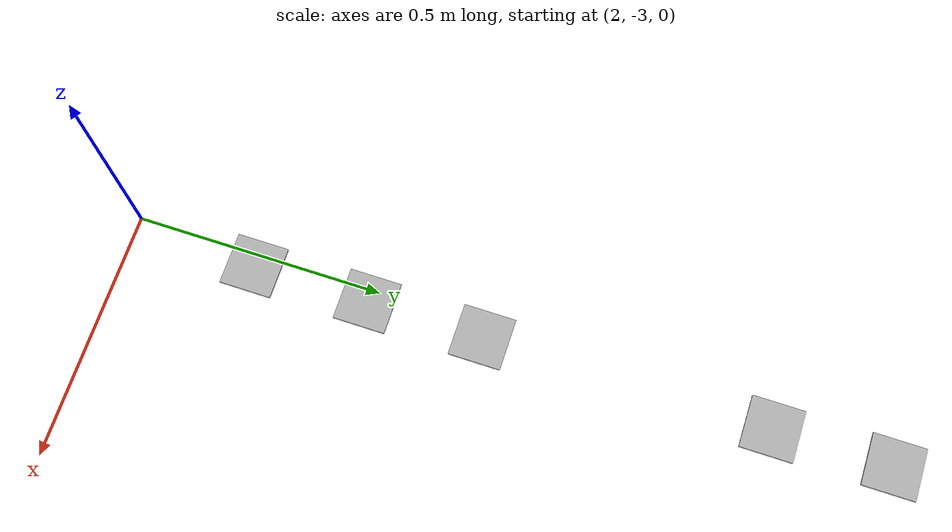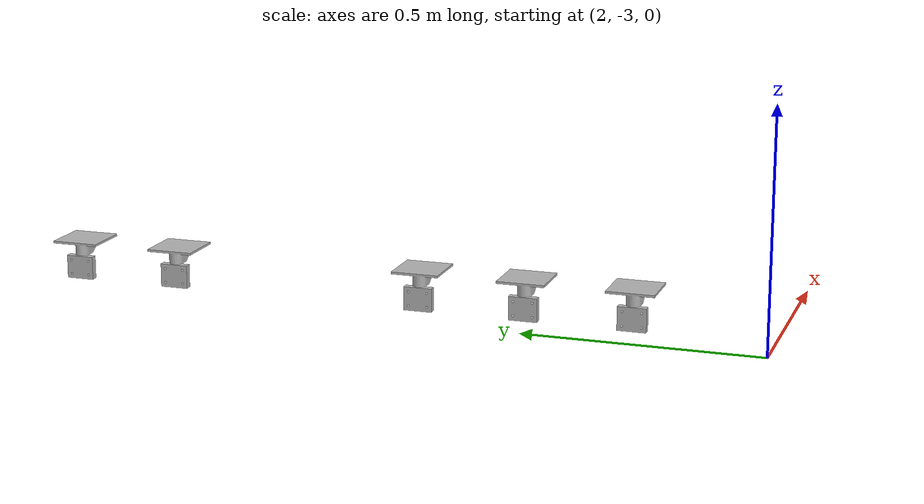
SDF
<sdf version="1.7">
 <world name="default">
  <model name="SolarPanel_0">
   <link name="solar_panel_base_link">
    <gravity>0</gravity>
    <visual name="visual">
     <geometry>
      <mesh><uri>/home/vincent/.gazebo/models/SolarPanel/supportSolarPanel.dae</uri><scale>1 1 1</scale></mesh>
     </geometry>
    </visual>
    <inertial>
     <inertia><ixx>1</ixx><ixy>0</ixy><ixz>0</ixz><iyy>1</iyy><iyz>0</iyz><izz>1</izz></inertia>
     <mass>1</mass>
    </inertial>
   </link>
   <link name="solar_panel">
    <inertial>
     <inertia><ixx>0.01</ixx><ixy>0</ixy><ixz>0</ixz><iyy>0.01</iyy><iyz>0</iyz><izz>0.01</izz></inertia>
     <mass>1</mass>
    </inertial>
    <pose>0 0 0.055 0 -0 3.14159</pose>
    <visual name="visual">
     <geometry>
      <mesh><uri>/home/vincent/.gazebo/models/SolarPanel/solarPanelTextured.dae</uri><scale>1 1 1</scale></mesh>
     </geometry>
     <material>
      <lighting>1</lighting>
      <script>
       <uri>/home/vincent/.gazebo/models/SolarPanel/materials/scripts</uri>
       <uri>/home/vincent/.gazebo/models/SolarPanel/materials/textures</uri>
       <name>solarPanelMat/Diffuse</name>
       <name>Gazebo/Grey</name>
      </script>
      <shader type="pixel"/>
     </material>
    </visual>
    <collision name="collision">
     <geometry>
      <mesh><uri>/home/vincent/.gazebo/models/SolarPanel/solarPanelTextured.dae</uri><scale>1 1 1</scale></mesh>
     </geometry>
     <surface>
      <friction>
       <ode><mu>1</mu><mu2>1</mu2><fdir1>0 0 0</fdir1><slip1>0</slip1><slip2>0</slip2></ode>
       <torsional>
        <coefficient>1</coefficient>
        <patch_radius>0</patch_radius>
        <surface_radius>0</surface_radius>
        <use_patch_radius>1</use_patch_radius>
        <ode><slip>0</slip></ode>
       </torsional>
      </friction>
      <bounce><restitution_coefficient>0</restitution_coefficient><threshold>1e+06</threshold></bounce>
      <contact>
       <collide_without_contact>0</collide_without_contact>
       <collide_without_contact_bitmask>1</collide_without_contact_bitmask>
       <collide_bitmask>1</collide_bitmask>
       <ode>
        <soft_cfm>0</soft_cfm>
        <soft_erp>0.2</soft_erp>
        <kp>1e+13</kp>
        <kd>1</kd>
        <max_vel>0.01</max_vel>
        <min_depth>0.01</min_depth>
       </ode>
       <bullet>
        <split_impulse>1</split_impulse>
        <split_impulse_penetration_threshold>-0.01</split_impulse_penetration_threshold>
        <soft_cfm>0</soft_cfm>
        <soft_erp>0.2</soft_erp>
        <kp>1e+13</kp>
        <kd>1</kd>
       </bullet>
      </contact>
     </surface>
    </collision>
   </link>
   <joint name="revolution" type="revolute">
    <parent>solar_panel_base_link</parent>
    <child>solar_panel</child>
    <axis>
     <xyz>0 0 1</xyz>
     <dynamics>
      <friction>0.005</friction>
      <damping>0.001</damping>
      <spring_reference>0</spring_reference>
      <spring_stiffness>0</spring_stiffness>
     </dynamics>
     <limit><lower>-1e+16</lower><upper>1e+16</upper></limit>
    </axis>
   </joint>
   <joint name="fix" type="fixed"><parent>world</parent><child>solar_panel_base_link</child></joint>
   <pose>2.037 -2.72457 0.044632 0 -0 1.5708</pose>
  </model>
  <model name="SolarPanel_0_clone">
   <link name="solar_panel_base_link">
    <gravity>0</gravity>
    <visual name="visual">
     <geometry>
      <mesh><uri>/home/vincent/.gazebo/models/SolarPanel/supportSolarPanel.dae</uri><scale>1 1 1</scale></mesh>
     </geometry>
    </visual>
    <inertial>
     <inertia><ixx>1</ixx><ixy>0</ixy><ixz>0</ixz><iyy>1</iyy><iyz>0</iyz><izz>1</izz></inertia>
     <mass>1</mass>
    </inertial>
   </link>
   <link name="solar_panel">
    <inertial>
     <inertia><ixx>0.01</ixx><ixy>0</ixy><ixz>0</ixz><iyy>0.01</iyy><iyz>0</iyz><izz>0.01</izz></inertia>
     <mass>1</mass>
    </inertial>
    <pose>0 0 0.055 0 -0 3.14159</pose>
    <visual name="visual">
     <geometry>
      <mesh><uri>/home/vincent/.gazebo/models/SolarPanel/solarPanelTextured.dae</uri><scale>1 1 1</scale></mesh>
     </geometry>
     <material>
      <lighting>1</lighting>
      <script>
       <uri>/home/vincent/.gazebo/models/SolarPanel/materials/scripts</uri>
       <uri>/home/vincent/.gazebo/models/SolarPanel/materials/textures</uri>
       <name>solarPanelMat/Diffuse</name>
       <name>Gazebo/Grey</name>
      </script>
      <shader type="pixel"/>
     </material>
    </visual>
    <collision name="collision">
     <geometry>
      <mesh><uri>/home/vincent/.gazebo/models/SolarPanel/solarPanelTextured.dae</uri><scale>1 1 1</scale></mesh>
     </geometry>
     <surface>
      <friction>
       <ode><mu>1</mu><mu2>1</mu2><fdir1>0 0 0</fdir1><slip1>0</slip1><slip2>0</slip2></ode>
       <torsional>
        <coefficient>1</coefficient>
        <patch_radius>0</patch_radius>
        <surface_radius>0</surface_radius>
        <use_patch_radius>1</use_patch_radius>
        <ode><slip>0</slip></ode>
       </torsional>
      </friction>
      <bounce><restitution_coefficient>0</restitution_coefficient><threshold>1e+06</threshold></bounce>
      <contact>
       <collide_without_contact>0</collide_without_contact>
       <collide_without_contact_bitmask>1</collide_without_contact_bitmask>
       <collide_bitmask>1</collide_bitmask>
       <ode>
        <soft_cfm>0</soft_cfm>
        <soft_erp>0.2</soft_erp>
        <kp>1e+13</kp>
        <kd>1</kd>
        <max_vel>0.01</max_vel>
        <min_depth>0.01</min_depth>
       </ode>
       <bullet>
        <split_impulse>1</split_impulse>
        <split_impulse_penetration_threshold>-0.01</split_impulse_penetration_threshold>
        <soft_cfm>0</soft_cfm>
        <soft_erp>0.2</soft_erp>
        <kp>1e+13</kp>
        <kd>1</kd>
       </bullet>
      </contact>
     </surface>
    </collision>
   </link>
   <joint name="revolution" type="revolute">
    <parent>solar_panel_base_link</parent>
    <child>solar_panel</child>
    <axis>
     <xyz>0 0 1</xyz>
     <dynamics>
      <friction>0.005</friction>
      <damping>0.001</damping>
      <spring_reference>0</spring_reference>
      <spring_stiffness>0</spring_stiffness>
     </dynamics>
     <limit><lower>-1e+16</lower><upper>1e+16</upper></limit>
    </axis>
   </joint>
   <joint name="fix" type="fixed"><parent>world</parent><child>solar_panel_base_link</child></joint>
   <pose>2.03634 -2.49972 0.044632 0 -0 1.5708</pose>
  </model>
  <model name="SolarPanel_0_clone_0">
   <link name="solar_panel_base_link">
    <gravity>0</gravity>
    <visual name="visual">
     <geometry>
      <mesh><uri>/home/vincent/.gazebo/models/SolarPanel/supportSolarPanel.dae</uri><scale>1 1 1</scale></mesh>
     </geometry>
    </visual>
    <inertial>
     <inertia><ixx>1</ixx><ixy>0</ixy><ixz>0</ixz><iyy>1</iyy><iyz>0</iyz><izz>1</izz></inertia>
     <mass>1</mass>
    </inertial>
   </link>
   <link name="solar_panel">
    <inertial>
     <inertia><ixx>0.01</ixx><ixy>0</ixy><ixz>0</ixz><iyy>0.01</iyy><iyz>0</iyz><izz>0.01</izz></inertia>
     <mass>1</mass>
    </inertial>
    <pose>0 0 0.055 0 -0 3.14159</pose>
    <visual name="visual">
     <geometry>
      <mesh><uri>/home/vincent/.gazebo/models/SolarPanel/solarPanelTextured.dae</uri><scale>1 1 1</scale></mesh>
     </geometry>
     <material>
      <lighting>1</lighting>
      <script>
       <uri>/home/vincent/.gazebo/models/SolarPanel/materials/scripts</uri>
       <uri>/home/vincent/.gazebo/models/SolarPanel/materials/textures</uri>
       <name>solarPanelMat/Diffuse</name>
       <name>Gazebo/Grey</name>
      </script>
      <shader type="pixel"/>
     </material>
    </visual>
    <collision name="collision">
     <geometry>
      <mesh><uri>/home/vincent/.gazebo/models/SolarPanel/solarPanelTextured.dae</uri><scale>1 1 1</scale></mesh>
     </geometry>
     <surface>
      <friction>
       <ode><mu>1</mu><mu2>1</mu2><fdir1>0 0 0</fdir1><slip1>0</slip1><slip2>0</slip2></ode>
       <torsional>
        <coefficient>1</coefficient>
        <patch_radius>0</patch_radius>
        <surface_radius>0</surface_radius>
        <use_patch_radius>1</use_patch_radius>
        <ode><slip>0</slip></ode>
       </torsional>
      </friction>
      <bounce><restitution_coefficient>0</restitution_coefficient><threshold>1e+06</threshold></bounce>
      <contact>
       <collide_without_contact>0</collide_without_contact>
       <collide_without_contact_bitmask>1</collide_without_contact_bitmask>
       <collide_bitmask>1</collide_bitmask>
       <ode>
        <soft_cfm>0</soft_cfm>
        <soft_erp>0.2</soft_erp>
        <kp>1e+13</kp>
        <kd>1</kd>
        <max_vel>0.01</max_vel>
        <min_depth>0.01</min_depth>
       </ode>
       <bullet>
        <split_impulse>1</split_impulse>
        <split_impulse_penetration_threshold>-0.01</split_impulse_penetration_threshold>
        <soft_cfm>0</soft_cfm>
        <soft_erp>0.2</soft_erp>
        <kp>1e+13</kp>
        <kd>1</kd>
       </bullet>
      </contact>
     </surface>
    </collision>
   </link>
   <joint name="revolution" type="revolute">
    <parent>solar_panel_base_link</parent>
    <child>solar_panel</child>
    <axis>
     <xyz>0 0 1</xyz>
     <dynamics>
      <friction>0.005</friction>
      <damping>0.001</damping>
      <spring_reference>0</spring_reference>
      <spring_stiffness>0</spring_stiffness>
     </dynamics>
     <limit><lower>-1e+16</lower><upper>1e+16</upper></limit>
    </axis>
   </joint>
   <joint name="fix" type="fixed"><parent>world</parent><child>solar_panel_base_link</child></joint>
   <pose>2.03603 -2.27559 0.044632 0 -0 1.5708</pose>
  </model>
  <model name="SolarPanel_0_clone_1">
   <link name="solar_panel_base_link">
    <gravity>0</gravity>
    <visual name="visual">
     <geometry>
      <mesh><uri>/home/vincent/.gazebo/models/SolarPanel/supportSolarPanel.dae</uri><scale>1 1 1</scale></mesh>
     </geometry>
    </visual>
    <inertial>
     <inertia><ixx>1</ixx><ixy>0</ixy><ixz>0</ixz><iyy>1</iyy><iyz>0</iyz><izz>1</izz></inertia>
     <mass>1</mass>
    </inertial>
   </link>
   <link name="solar_panel">
    <inertial>
     <inertia><ixx>0.01</ixx><ixy>0</ixy><ixz>0</ixz><iyy>0.01</iyy><iyz>0</iyz><izz>0.01</izz></inertia>
     <mass>1</mass>
    </inertial>
    <pose>0 0 0.055 0 -0 3.14159</pose>
    <visual name="visual">
     <geometry>
      <mesh><uri>/home/vincent/.gazebo/models/SolarPanel/solarPanelTextured.dae</uri><scale>1 1 1</scale></mesh>
     </geometry>
     <material>
      <lighting>1</lighting>
      <script>
       <uri>/home/vincent/.gazebo/models/SolarPanel/materials/scripts</uri>
       <uri>/home/vincent/.gazebo/models/SolarPanel/materials/textures</uri>
       <name>solarPanelMat/Diffuse</name>
       <name>Gazebo/Grey</name>
      </script>
      <shader type="pixel"/>
     </material>
    </visual>
    <collision name="collision">
     <geometry>
      <mesh><uri>/home/vincent/.gazebo/models/SolarPanel/solarPanelTextured.dae</uri><scale>1 1 1</scale></mesh>
     </geometry>
     <surface>
      <friction>
       <ode><mu>1</mu><mu2>1</mu2><fdir1>0 0 0</fdir1><slip1>0</slip1><slip2>0</slip2></ode>
       <torsional>
        <coefficient>1</coefficient>
        <patch_radius>0</patch_radius>
        <surface_radius>0</surface_radius>
        <use_patch_radius>1</use_patch_radius>
        <ode><slip>0</slip></ode>
       </torsional>
      </friction>
      <bounce><restitution_coefficient>0</restitution_coefficient><threshold>1e+06</threshold></bounce>
      <contact>
       <collide_without_contact>0</collide_without_contact>
       <collide_without_contact_bitmask>1</collide_without_contact_bitmask>
       <collide_bitmask>1</collide_bitmask>
       <ode>
        <soft_cfm>0</soft_cfm>
        <soft_erp>0.2</soft_erp>
        <kp>1e+13</kp>
        <kd>1</kd>
        <max_vel>0.01</max_vel>
        <min_depth>0.01</min_depth>
       </ode>
       <bullet>
        <split_impulse>1</split_impulse>
        <split_impulse_penetration_threshold>-0.01</split_impulse_penetration_threshold>
        <soft_cfm>0</soft_cfm>
        <soft_erp>0.2</soft_erp>
        <kp>1e+13</kp>
        <kd>1</kd>
       </bullet>
      </contact>
     </surface>
    </collision>
   </link>
   <joint name="revolution" type="revolute">
    <parent>solar_panel_base_link</parent>
    <child>solar_panel</child>
    <axis>
     <xyz>0 0 1</xyz>
     <dynamics>
      <friction>0.005</friction>
      <damping>0.001</damping>
      <spring_reference>0</spring_reference>
      <spring_stiffness>0</spring_stiffness>
     </dynamics>
     <limit><lower>-1e+16</lower><upper>1e+16</upper></limit>
    </axis>
   </joint>
   <joint name="fix" type="fixed"><parent>world</parent><child>solar_panel_base_link</child></joint>
   <pose>2.03705 -1.72433 0.044632 0 -0 1.5708</pose>
  </model>
  <model name="SolarPanel_0_clone_2">
   <link name="solar_panel_base_link">
    <gravity>0</gravity>
    <visual name="visual">
     <geometry>
      <mesh><uri>/home/vincent/.gazebo/models/SolarPanel/supportSolarPanel.dae</uri><scale>1 1 1</scale></mesh>
     </geometry>
    </visual>
    <inertial>
     <inertia><ixx>1</ixx><ixy>0</ixy><ixz>0</ixz><iyy>1</iyy><iyz>0</iyz><izz>1</izz></inertia>
     <mass>1</mass>
    </inertial>
   </link>
   <link name="solar_panel">
    <inertial>
     <inertia><ixx>0.01</ixx><ixy>0</ixy><ixz>0</ixz><iyy>0.01</iyy><iyz>0</iyz><izz>0.01</izz></inertia>
     <mass>1</mass>
    </inertial>
    <pose>0 0 0.055 0 -0 3.14159</pose>
    <visual name="visual">
     <geometry>
      <mesh><uri>/home/vincent/.gazebo/models/SolarPanel/solarPanelTextured.dae</uri><scale>1 1 1</scale></mesh>
     </geometry>
     <material>
      <lighting>1</lighting>
      <script>
       <uri>/home/vincent/.gazebo/models/SolarPanel/materials/scripts</uri>
       <uri>/home/vincent/.gazebo/models/SolarPanel/materials/textures</uri>
       <name>solarPanelMat/Diffuse</name>
       <name>Gazebo/Grey</name>
      </script>
      <shader type="pixel"/>
     </material>
    </visual>
    <collision name="collision">
     <geometry>
      <mesh><uri>/home/vincent/.gazebo/models/SolarPanel/solarPanelTextured.dae</uri><scale>1 1 1</scale></mesh>
     </geometry>
     <surface>
      <friction>
       <ode><mu>1</mu><mu2>1</mu2><fdir1>0 0 0</fdir1><slip1>0</slip1><slip2>0</slip2></ode>
       <torsional>
        <coefficient>1</coefficient>
        <patch_radius>0</patch_radius>
        <surface_radius>0</surface_radius>
        <use_patch_radius>1</use_patch_radius>
        <ode><slip>0</slip></ode>
       </torsional>
      </friction>
      <bounce><restitution_coefficient>0</restitution_coefficient><threshold>1e+06</threshold></bounce>
      <contact>
       <collide_without_contact>0</collide_without_contact>
       <collide_without_contact_bitmask>1</collide_without_contact_bitmask>
       <collide_bitmask>1</collide_bitmask>
       <ode>
        <soft_cfm>0</soft_cfm>
        <soft_erp>0.2</soft_erp>
        <kp>1e+13</kp>
        <kd>1</kd>
        <max_vel>0.01</max_vel>
        <min_depth>0.01</min_depth>
       </ode>
       <bullet>
        <split_impulse>1</split_impulse>
        <split_impulse_penetration_threshold>-0.01</split_impulse_penetration_threshold>
        <soft_cfm>0</soft_cfm>
        <soft_erp>0.2</soft_erp>
        <kp>1e+13</kp>
        <kd>1</kd>
       </bullet>
      </contact>
     </surface>
    </collision>
   </link>
   <joint name="revolution" type="revolute">
    <parent>solar_panel_base_link</parent>
    <child>solar_panel</child>
    <axis>
     <xyz>0 0 1</xyz>
     <dynamics>
      <friction>0.005</friction>
      <damping>0.001</damping>
      <spring_reference>0</spring_reference>
      <spring_stiffness>0</spring_stiffness>
     </dynamics>
     <limit><lower>-1e+16</lower><upper>1e+16</upper></limit>
    </axis>
   </joint>
   <joint name="fix" type="fixed"><parent>world</parent><child>solar_panel_base_link</child></joint>
   <pose>2.03643 -1.50007 0.044632 0 -0 1.5708</pose>
  </model>
 </world>
</sdf>
